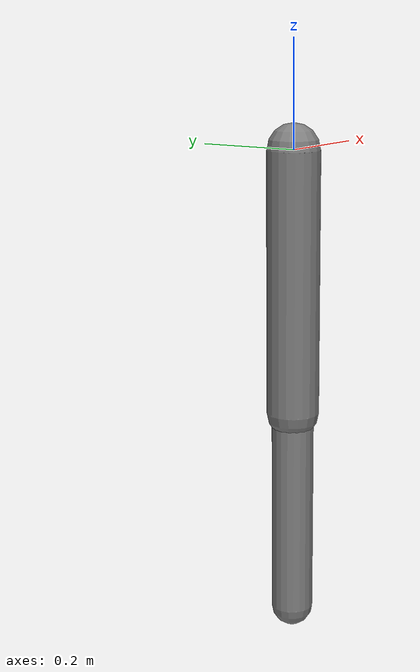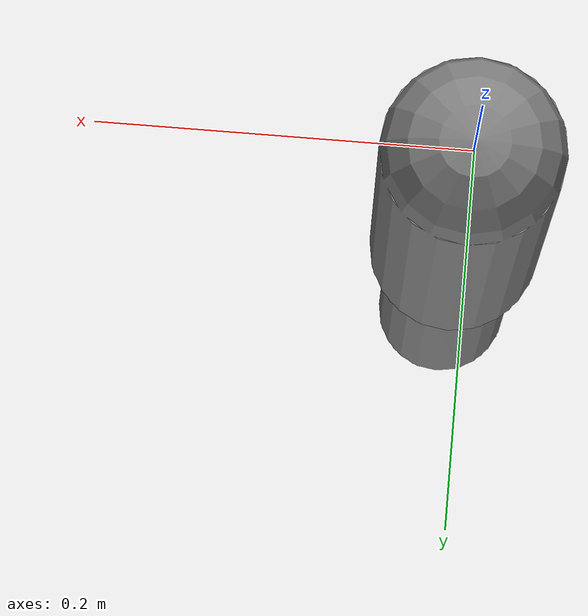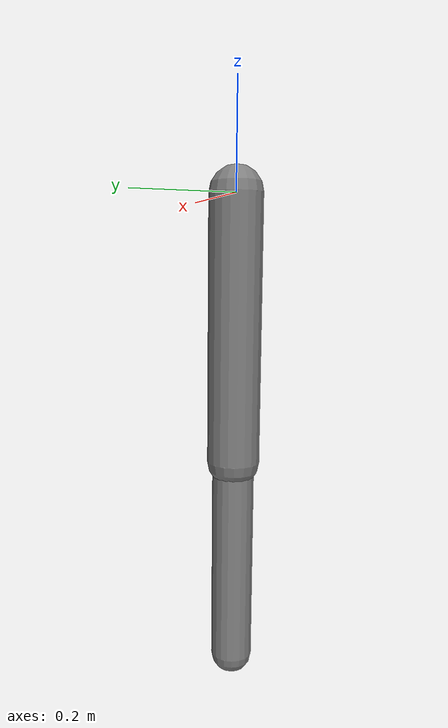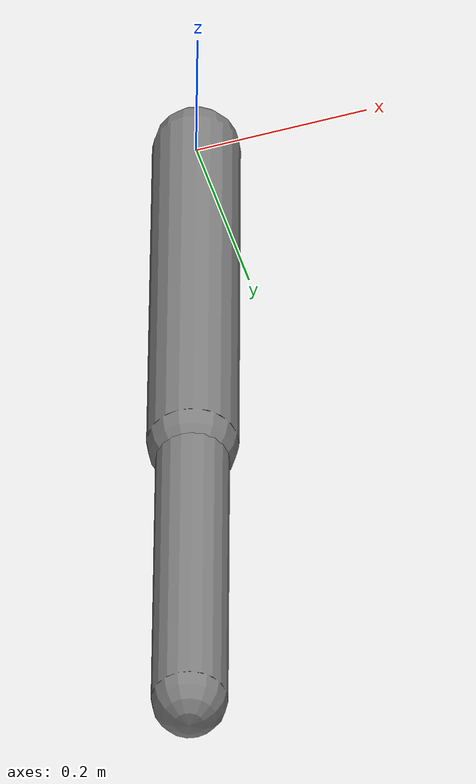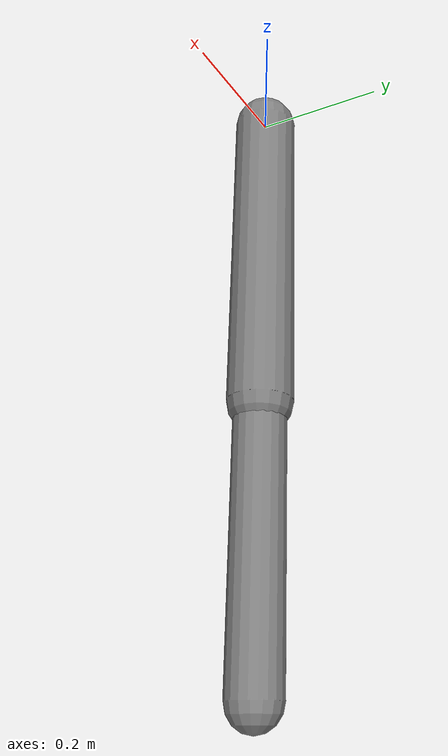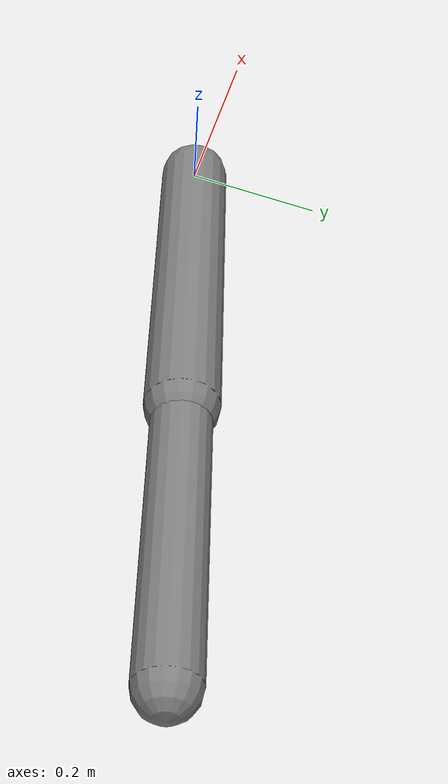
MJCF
<mujoco model="actuated">
        <option gravity="0 0 -9.81" timestep="0.002"/>
        <worldbody>
            <body name="arm" pos="0 0 0">
                <joint name="shoulder" type="hinge" axis="0 1 0"/>
                <geom type="capsule" size="0.05" fromto="0 0 0 0 0 -0.5" mass="1.0"/>
                <body name="forearm" pos="0 0 -0.5">
                    <joint name="elbow" type="hinge" axis="0 1 0"/>
                    <geom type="capsule" size="0.04" fromto="0 0 0 0 0 -0.4" mass="0.5"/>
                </body>
            </body>
        </worldbody>
        <actuator>
            <motor joint="shoulder" gear="1"/>
            <motor joint="elbow" gear="1"/>
        </actuator>
    </mujoco>
